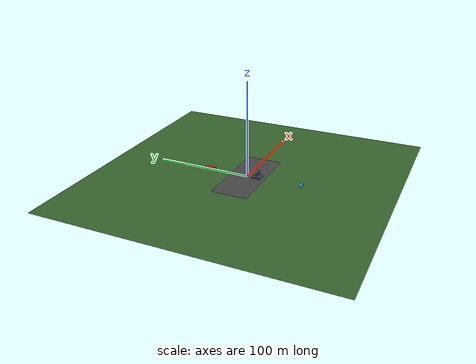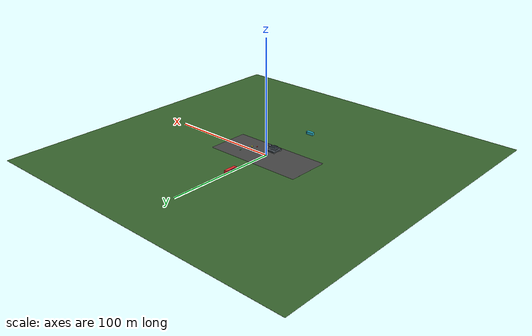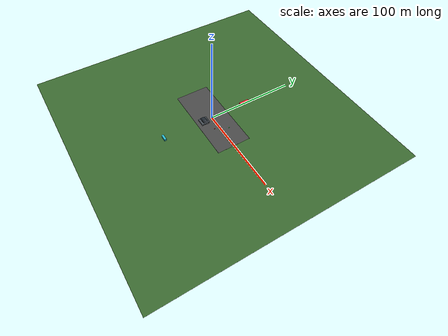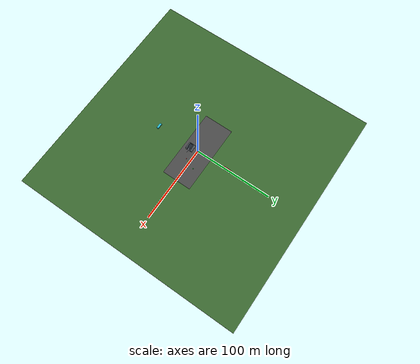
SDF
<sdf version="1.10">
 <world name="mantis_robot_world">
  <physics name="1ms" type="ignored">
   <max_step_size>0.001</max_step_size>
   <real_time_factor>1.0</real_time_factor>
  </physics>
  <plugin filename="gz-sim-physics-system" name="gz::sim::systems::Physics"/>
  <plugin filename="gz-sim-user-commands-system" name="gz::sim::systems::UserCommands"/>
  <plugin filename="gz-sim-scene-broadcaster-system" name="gz::sim::systems::SceneBroadcaster"/>
  <plugin filename="gz-sim-sensors-system" name="gz::sim::systems::Sensors">
   <render_engine>ogre2</render_engine>
  </plugin>
  <light type="directional" name="sun">
   <pose>0 0 30 0 0 0</pose>
   <diffuse>0.9 0.9 0.86 1</diffuse>
   <specular>0.25 0.25 0.25 1</specular>
   <direction>-0.45 0.2 -0.86</direction>
  </light>
  <model name="grass_ground">
   <static>true</static>
   <pose>0 0 -0.03 0 0 0</pose>
   <link name="link">
    <collision name="c"><geometry><box><size>300 300 0.04</size></box></geometry></collision>
    <visual name="v">
     <geometry><box><size>300 300 0.04</size></box></geometry>
     <material><ambient>0.18 0.32 0.14 1</ambient><diffuse>0.22 0.40 0.18 1</diffuse></material>
    </visual>
   </link>
  </model>
  <model name="road">
   <static>true</static>
   <link name="link">
    <collision name="collision"><geometry><box><size>90 38 0.04</size></box></geometry></collision>
    <visual name="asphalt">
     <geometry><box><size>90 38 0.04</size></box></geometry>
     <material><ambient>0.22 0.22 0.22 1</ambient><diffuse>0.28 0.28 0.28 1</diffuse></material>
    </visual>
    <visual name="lane_1">
     <pose>14 -2 0.035 0 0 0</pose>
     <geometry><box><size>22 0.12 0.012</size></box></geometry>
     <material><ambient>0.95 0.84 0.18 1</ambient><diffuse>0.95 0.84 0.18 1</diffuse></material>
    </visual>
    <visual name="lane_2">
     <pose>42 -2 0.035 0 0 0</pose>
     <geometry><box><size>22 0.12 0.012</size></box></geometry>
     <material><ambient>0.95 0.84 0.18 1</ambient><diffuse>0.95 0.84 0.18 1</diffuse></material>
    </visual>
   </link>
  </model>
  <include><name>mantis_robot</name><pose>0 -8 0.0 0 0 0</pose><uri>../models/mantis_robot</uri></include>
  <model name="ball_green">
   <pose>22 8 1.0 0 0 0</pose>
   <link name="link">
    <inertial><mass>1.5</mass><inertia><ixx>0.15</ixx><iyy>0.15</iyy><izz>0.15</izz></inertia></inertial>
    <visual name="v">
     <geometry><sphere><radius>0.55</radius></sphere></geometry>
     <material><ambient>0.10 0.85 0.20 1</ambient><diffuse>0.14 0.92 0.25 1</diffuse></material>
    </visual>
   </link>
   <plugin filename="gz-sim-velocity-control-system" name="gz::sim::systems::VelocityControl">
    <topic>ball_green/cmd_vel</topic>
   </plugin>
  </model>
  <model name="ball_red">
   <pose>16 -6 1.0 0 0 0</pose>
   <link name="link">
    <inertial><mass>1.5</mass><inertia><ixx>0.15</ixx><iyy>0.15</iyy><izz>0.15</izz></inertia></inertial>
    <visual name="v">
     <geometry><sphere><radius>0.55</radius></sphere></geometry>
     <material><ambient>0.92 0.10 0.10 1</ambient><diffuse>0.95 0.14 0.14 1</diffuse></material>
    </visual>
   </link>
   <plugin filename="gz-sim-velocity-control-system" name="gz::sim::systems::VelocityControl">
    <topic>ball_red/cmd_vel</topic>
   </plugin>
  </model>
  <model name="moving_target">
   <pose>18 -2 2.0 0 0 0</pose>
   <link name="link">
    <inertial><mass>2</mass><inertia><ixx>0.2</ixx><iyy>0.2</iyy><izz>0.2</izz></inertia></inertial>
    <visual name="v">
     <geometry><sphere><radius>0.7</radius></sphere></geometry>
     <material><ambient>0.98 0.90 0.10 1</ambient><diffuse>0.99 0.95 0.18 1</diffuse></material>
    </visual>
   </link>
   <plugin filename="gz-sim-velocity-control-system" name="gz::sim::systems::VelocityControl">
    <topic>moving_target/cmd_vel</topic>
   </plugin>
  </model>
  <model name="ring_bus_a">
   <pose>0.0 42.0 1.6 0 0 1.5708</pose>
   <link name="link">
    <inertial>
     <mass>80</mass>
     <inertia><ixx>200</ixx><iyy>800</iyy><izz>850</izz><ixy>0</ixy><ixz>0</ixz><iyz>0</iyz></inertia>
    </inertial>
    <gravity>false</gravity>
    <visual name="body">
     <geometry><box><size>11 2.6 3.0</size></box></geometry>
     <material><ambient>0.85 0.15 0.15 1</ambient><diffuse>0.92 0.18 0.18 1</diffuse></material>
    </visual>
    <visual name="window_strip">
     <pose>0 0 0.55 0 0 0</pose>
     <geometry><box><size>9 2.62 0.6</size></box></geometry>
     <material><ambient>0.10 0.10 0.18 1</ambient><diffuse>0.12 0.12 0.22 1</diffuse></material>
    </visual>
   </link>
   <plugin filename="gz-sim-velocity-control-system" name="gz::sim::systems::VelocityControl">
    <topic>ring_bus_a/cmd_vel</topic>
   </plugin>
  </model>
  <model name="ring_truck_south">
   <pose>0.0 -58.0 1.5 0 0 0</pose>
   <link name="link">
    <inertial><mass>50</mass><inertia><ixx>50</ixx><iyy>200</iyy><izz>220</izz></inertia></inertial>
    <gravity>false</gravity>
    <visual name="body">
     <geometry><box><size>7 2.4 2.6</size></box></geometry>
     <material><ambient>0.12 0.55 0.62 1</ambient><diffuse>0.16 0.72 0.80 1</diffuse></material>
    </visual>
    <visual name="cab">
     <pose>2.4 0 0.4 0 0 0</pose>
     <geometry><box><size>2.2 2.4 1.8</size></box></geometry>
     <material><ambient>0.10 0.30 0.40 1</ambient><diffuse>0.14 0.40 0.50 1</diffuse></material>
    </visual>
   </link>
  </model>
 </world>
</sdf>

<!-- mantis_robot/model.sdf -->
<sdf version="1.10">
  <model name="mantis_robot">

    <link name="base_link">
      <pose>0.000000 0.000000 0.000000 0 0 0</pose>
      <gravity>false</gravity>
      <inertial><mass>80</mass><inertia><ixx>45</ixx><iyy>45</iyy><izz>45</izz></inertia></inertial>
      <collision name="base_collision">
        <pose>0.9 -2.37 0.65 0 0 0</pose>
        <geometry><box><size>9.4 9.4 1.4</size></box></geometry>
      </collision>
      <visual name="base_visual">
        <geometry><mesh><uri>meshes/base_link.stl</uri></mesh></geometry>
        <material><ambient>0.18 0.20 0.22 1</ambient><diffuse>0.26 0.29 0.32 1</diffuse></material>
      </visual>
      <visual name="wheel_fl">
        <pose>5.0 1.8 -0.05 0 1.5708 0</pose>
        <geometry><cylinder><radius>0.6</radius><length>0.4</length></cylinder></geometry>
        <material><ambient>0.06 0.06 0.06 1</ambient><diffuse>0.10 0.10 0.10 1</diffuse></material>
      </visual>
      <visual name="wheel_fr">
        <pose>5.0 -6.5 -0.05 0 1.5708 0</pose>
        <geometry><cylinder><radius>0.6</radius><length>0.4</length></cylinder></geometry>
        <material><ambient>0.06 0.06 0.06 1</ambient><diffuse>0.10 0.10 0.10 1</diffuse></material>
      </visual>
      <visual name="wheel_rl">
        <pose>-3.2 1.8 -0.05 0 1.5708 0</pose>
        <geometry><cylinder><radius>0.6</radius><length>0.4</length></cylinder></geometry>
        <material><ambient>0.06 0.06 0.06 1</ambient><diffuse>0.10 0.10 0.10 1</diffuse></material>
      </visual>
      <visual name="wheel_rr">
        <pose>-3.2 -6.5 -0.05 0 1.5708 0</pose>
        <geometry><cylinder><radius>0.6</radius><length>0.4</length></cylinder></geometry>
        <material><ambient>0.06 0.06 0.06 1</ambient><diffuse>0.10 0.10 0.10 1</diffuse></material>
      </visual>
    </link>

    <link name="pan_link">
      <pose>2.259159 -2.233988 2.039962 0 0 0</pose>
      <inertial><mass>40</mass><inertia><ixx>60</ixx><iyy>60</iyy><izz>60</izz></inertia></inertial>
      <collision name="pan_collision">
        <pose>0 0 1.1 0 0 0</pose>
        <geometry><box><size>8.2 6.2 2.8</size></box></geometry>
      </collision>
      <visual name="pan_visual">
        <geometry><mesh><uri>meshes/pan_link.stl</uri></mesh></geometry>
        <material><ambient>0.08 0.10 0.12 1</ambient><diffuse>0.12 0.15 0.18 1</diffuse></material>
      </visual>
    </link>

    <joint name="pan_joint" type="revolute">
      <parent>base_link</parent>
      <child>pan_link</child>
      <pose relative_to="base_link">2.259159 -2.233988 2.039962 0 0 0</pose>
      <axis>
        <xyz expressed_in="base_link">0 0 1</xyz>
        <limit><lower>-1.48876584</lower><upper>1.55683362</upper><effort>3000</effort><velocity>2.5</velocity></limit>
        <dynamics><damping>120.0</damping><friction>8.0</friction></dynamics>
      </axis>
    </joint>

    <link name="tilt_link">
      <pose>3.998708 -2.146332 3.529934 0 0 0</pose>
      <inertial>
        <!-- CoM on the rotation axis so gravity creates no static torque
             on tilt_joint. Otherwise the inner JointPositionController
             needed >350 N·m just to hold position. -->
        <pose>0 0 0 0 0 0</pose>
        <mass>12</mass>
        <inertia><ixx>15</ixx><iyy>30</iyy><izz>30</izz></inertia>
      </inertial>
      <collision name="tilt_collision">
        <pose>3.0 0 0.6 0 0 0</pose>
        <geometry><box><size>6.4 1.8 1.8</size></box></geometry>
      </collision>
      <visual name="tilt_visual">
        <geometry><mesh><uri>meshes/tilt_link.stl</uri></mesh></geometry>
        <material><ambient>0.45 0.48 0.52 1</ambient><diffuse>0.60 0.63 0.68 1</diffuse></material>
      </visual>
      <visual name="nose_camera_marker">
        <pose>6.250000 0.000000 1.650000 0 0 0</pose>
        <geometry><box><size>0.28 0.22 0.18</size></box></geometry>
        <material><ambient>0.0 0.55 0.65 1</ambient><diffuse>0.0 0.8 0.9 1</diffuse></material>
      </visual>
      <sensor name="nose_camera" type="camera">
        <pose>6.250000 0.000000 1.650000 0 0 0</pose>
        <topic>/mantis/nose_camera/image</topic>
        <update_rate>30</update_rate>
        <camera>
          <horizontal_fov>1.012</horizontal_fov>
          <image><width>1280</width><height>720</height><format>R8G8B8</format></image>
          <clip><near>0.1</near><far>160</far></clip>
        </camera>
      </sensor>
    </link>

    <joint name="tilt_joint" type="revolute">
      <parent>pan_link</parent>
      <child>tilt_link</child>
      <pose relative_to="pan_link">1.739549 0.087656 1.489971 0 0 0</pose>
      <axis>
        <xyz expressed_in="pan_link">0 1 0</xyz>
        <limit><lower>-0.69813168</lower><upper>0.52359879</upper><effort>2500</effort><velocity>2.0</velocity></limit>
        <dynamics><damping>90.0</damping><friction>6.0</friction></dynamics>
      </axis>
    </joint>

    <plugin filename="gz-sim-joint-position-controller-system" name="gz::sim::systems::JointPositionController">
      <joint_name>pan_joint</joint_name>
      <topic>/mantis/pan_cmd</topic>
      <p_gain>2000.0</p_gain>
      <i_gain>60.0</i_gain>
      <d_gain>900.0</d_gain>
      <i_max>500.0</i_max>
      <i_min>-500.0</i_min>
      <cmd_max>3000.0</cmd_max>
      <cmd_min>-3000.0</cmd_min>
      <initial_position>0.0</initial_position>
    </plugin>
    <plugin filename="gz-sim-joint-position-controller-system" name="gz::sim::systems::JointPositionController">
      <joint_name>tilt_joint</joint_name>
      <topic>/mantis/tilt_cmd</topic>
      <p_gain>1750.0</p_gain>
      <i_gain>50.0</i_gain>
      <d_gain>900.0</d_gain>
      <i_max>400.0</i_max>
      <i_min>-400.0</i_min>
      <cmd_max>2500.0</cmd_max>
      <cmd_min>-2500.0</cmd_min>
      <initial_position>0.20943951</initial_position>
    </plugin>
    <plugin filename="gz-sim-joint-state-publisher-system" name="gz::sim::systems::JointStatePublisher">
      <topic>/mantis/joint_states</topic>
      <joint_name>pan_joint</joint_name>
      <joint_name>tilt_joint</joint_name>
    </plugin>
  </model>
</sdf>
